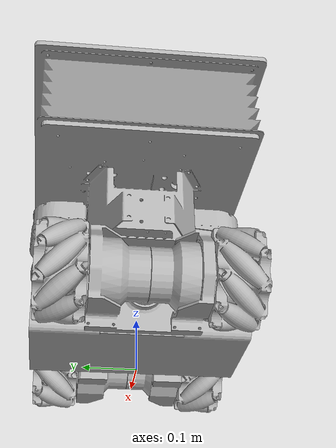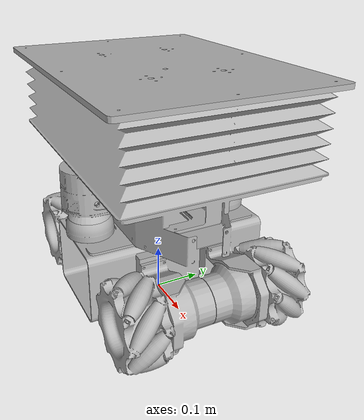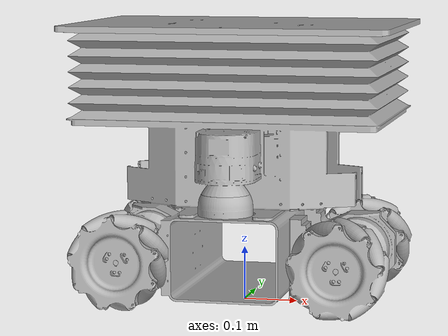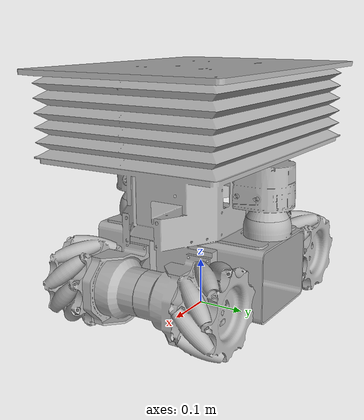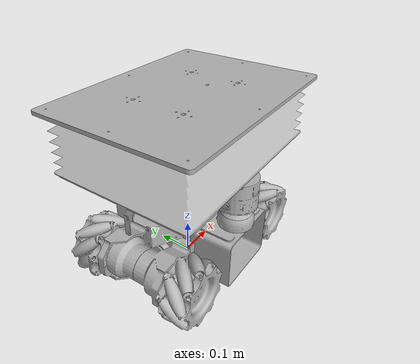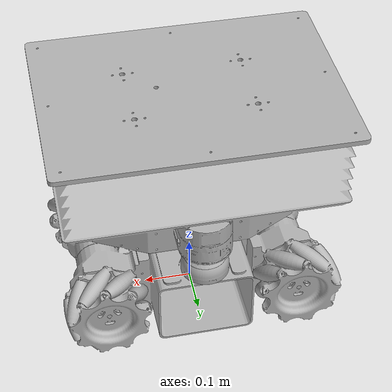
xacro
<?xml version="1.0" ?>
<robot name="activeroboticx_mecanum" xmlns:xacro="http://www.ros.org/wiki/xacro">

<xacro:include filename="$(find activeroboticx_mecanum)/urdf/materials.xacro" />
<xacro:include filename="$(find activeroboticx_mecanum)/urdf/activeroboticx_mecanum.trans" />
<xacro:include filename="$(find activeroboticx_mecanum)/urdf/activeroboticx_mecanum.gazebo" />

<link name="base_link">
  <inertial>
    <origin rpy="0 0 0" xyz="-0.002067261604428623 -9.778246955711723e-06 0.250496264751393"/>
    <mass value="8.09906607499397"/>
    <inertia ixx="4.716901" ixy="-9.4e-05" ixz="-0.047269" iyy="6.297014" iyz="9.3e-05" izz="4.46011"/>
  </inertial>
  <visual>
    <origin rpy="0 0 0" xyz="0 0 0"/>
    <geometry>
      <mesh filename="package://activeroboticx_mecanum/meshes/base_link.stl" scale="0.001 0.001 0.001"/>
    </geometry>
    <material name="silver"/>
  </visual>
  <collision>
    <origin rpy="0 0 0" xyz="0 0 0"/>
    <geometry>
      <mesh filename="package://activeroboticx_mecanum/meshes/base_link.stl" scale="0.001 0.001 0.001"/>
    </geometry>
  </collision>
</link>

<link name="wheel_fr">
  <inertial>
    <origin rpy="0 0 0" xyz="2.9652387883188913e-05 0.01645244231972756 -1.3155933793251862e-05"/>
    <mass value="1.028659645614542"/>
    <inertia ixx="0.013151" ixy="-5e-06" ixz="5e-06" iyy="0.019751" iyz="2e-06" izz="0.013159"/>
  </inertial>
  <visual>
    <origin rpy="0 0 0" xyz="-0.2025 0.1695 -0.09"/>
    <geometry>
      <mesh filename="package://activeroboticx_mecanum/meshes/wheel_fr.stl" scale="0.001 0.001 0.001"/>
    </geometry>
    <material name="silver"/>
  </visual>
  <collision>
    <origin rpy="0 0 0" xyz="-0.2025 0.1695 -0.09"/>
    <geometry>
      <mesh filename="package://activeroboticx_mecanum/meshes/wheel_fr.stl" scale="0.001 0.001 0.001"/>
    </geometry>
  </collision>
</link>

<link name="wheel_fl">
  <inertial>
    <origin rpy="0 0 0" xyz="2.9645434971137252e-05 -0.01645368864755406 -1.299080277231135e-05"/>
    <mass value="1.028645157582681"/>
    <inertia ixx="0.013151" ixy="5e-06" ixz="5e-06" iyy="0.019751" iyz="-2e-06" izz="0.013159"/>
  </inertial>
  <visual>
    <origin rpy="0 0 0" xyz="-0.2025 -0.1695 -0.09"/>
    <geometry>
      <mesh filename="package://activeroboticx_mecanum/meshes/wheel_fl.stl" scale="0.001 0.001 0.001"/>
    </geometry>
    <material name="silver"/>
  </visual>
  <collision>
    <origin rpy="0 0 0" xyz="-0.2025 -0.1695 -0.09"/>
    <geometry>
      <mesh filename="package://activeroboticx_mecanum/meshes/wheel_fl.stl" scale="0.001 0.001 0.001"/>
    </geometry>
  </collision>
</link>

<link name="wheel_br">
  <inertial>
    <origin rpy="0 0 0" xyz="-2.7943556098891653e-05 0.01645350428185552 -1.3156281121126656e-05"/>
    <mass value="1.028274501056833"/>
    <inertia ixx="0.01315" ixy="5e-06" ixz="-5e-06" iyy="0.01975" iyz="2e-06" izz="0.013158"/>
  </inertial>
  <visual>
    <origin rpy="0 0 0" xyz="0.2025 0.1695 -0.09"/>
    <geometry>
      <mesh filename="package://activeroboticx_mecanum/meshes/wheel_br.stl" scale="0.001 0.001 0.001"/>
    </geometry>
    <material name="silver"/>
  </visual>
  <collision>
    <origin rpy="0 0 0" xyz="0.2025 0.1695 -0.09"/>
    <geometry>
      <mesh filename="package://activeroboticx_mecanum/meshes/wheel_br.stl" scale="0.001 0.001 0.001"/>
    </geometry>
  </collision>
</link>

<link name="wheel_bl">
  <inertial>
    <origin rpy="0 0 0" xyz="-2.7965054648998455e-05 -0.016452209098566956 -1.2980013533989143e-05"/>
    <mass value="1.0928286344150415"/>
    <inertia ixx="0.01315" ixy="-5e-06" ixz="-5e-06" iyy="0.01975" iyz="-2e-06" izz="0.013158"/>
  </inertial>
  <visual>
    <origin rpy="0 0 0" xyz="0.2025 -0.1695 -0.09"/>
    <geometry>
      <mesh filename="package://activeroboticx_mecanum/meshes/wheel_bl.stl" scale="0.001 0.001 0.001"/>
    </geometry>
    <material name="silver"/>
  </visual>
  <collision>
    <origin rpy="0 0 0" xyz="0.2025 -0.1695 -0.09"/>
    <geometry>
      <mesh filename="package://activeroboticx_mecanum/meshes/wheel_bl.stl" scale="0.001 0.001 0.001"/>
    </geometry>
  </collision>
</link>

<link name="lidar_right">
  <inertial>
    <origin rpy="0 0 0" xyz="4.210194106515371e-05 -0.0008159080526261853 -0.019935922055739658"/>
    <mass value="0.231047091009913"/>
    <inertia ixx="0.001576" ixy="0.0" ixz="0.0" iyy="0.001574" iyz="-1e-06" izz="0.002614"/>
  </inertial>
  <visual>
    <origin rpy="0 0 0" xyz="4.2e-05 0.15767 -0.221"/>
    <geometry>
      <mesh filename="package://activeroboticx_mecanum/meshes/lidar_right.stl" scale="0.001 0.001 0.001"/>
    </geometry>
    <material name="silver"/>
  </visual>
  <collision>
    <origin rpy="0 0 0" xyz="4.2e-05 0.15767 -0.221"/>
    <geometry>
      <mesh filename="package://activeroboticx_mecanum/meshes/lidar_right.stl" scale="0.001 0.001 0.001"/>
    </geometry>
  </collision>
</link>

<link name="lidar_left">
  <inertial>
    <origin rpy="0 0 0" xyz="-4.21020474641944e-05 0.0008159077486483424 -0.01993592205573974"/>
    <mass value="0.2310470910099243"/>
    <inertia ixx="0.001576" ixy="0.0" ixz="-0.0" iyy="0.001574" iyz="1e-06" izz="0.002614"/>
  </inertial>
  <visual>
    <origin rpy="0 0 0" xyz="-4.2e-05 -0.15767 -0.221"/>
    <geometry>
      <mesh filename="package://activeroboticx_mecanum/meshes/lidar_left.stl" scale="0.001 0.001 0.001"/>
    </geometry>
    <material name="silver"/>
  </visual>
  <collision>
    <origin rpy="0 0 0" xyz="-4.2e-05 -0.15767 -0.221"/>
    <geometry>
      <mesh filename="package://activeroboticx_mecanum/meshes/lidar_left.stl" scale="0.001 0.001 0.001"/>
    </geometry>
  </collision>
</link>

<joint name="motor_fr" type="continuous">
  <origin rpy="0 0 0" xyz="0.2025 -0.1695 0.09"/>
  <parent link="base_link"/>
  <child link="wheel_fr"/>
  <axis xyz="0.0 0.01 0.0"/>
  <limit effort="100" velocity="100"/>
  <joint_properties damping="0.0" friction="0.0"/>
</joint>

<joint name="motor_fl" type="continuous">
  <origin rpy="0 0 0" xyz="0.2025 0.1695 0.09"/>
  <parent link="base_link"/>
  <child link="wheel_fl"/>
  <axis xyz="0.0 0.01 0.0"/>
  <limit effort="100" velocity="100"/>
  <joint_properties damping="0.0" friction="0.0"/>
</joint>

<joint name="motor_br" type="continuous">
  <origin rpy="0 0 0" xyz="-0.2025 -0.1695 0.09"/>
  <parent link="base_link"/>
  <child link="wheel_br"/>
  <axis xyz="0.0 0.01 0.0"/>
  <limit effort="100" velocity="100"/>
  <joint_properties damping="0.0" friction="0.0"/>
</joint>

<joint name="motor_bl" type="continuous">
  <origin rpy="0 0 0" xyz="-0.2025 0.1695 0.09"/>
  <parent link="base_link"/>
  <child link="wheel_bl"/>
  <axis xyz="0.0 0.01 0.0"/>
  <limit effort="100" velocity="100"/>
  <joint_properties damping="0.0" friction="0.0"/>
</joint>

<joint name="Rigid5" type="fixed">
  <origin rpy="0 0 0" xyz="-4.2e-05 -0.15767 0.221"/>
  <parent link="base_link"/>
  <child link="lidar_right"/>
</joint>

<joint name="Rigid6" type="fixed">
  <origin rpy="0 0 0" xyz="4.2e-05 0.15767 0.221"/>
  <parent link="base_link"/>
  <child link="lidar_left"/>
</joint>

</robot>

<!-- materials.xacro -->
<robot name="activeroboticx_mecanum" xmlns:xacro="http://www.ros.org/wiki/xacro" >

<material name="silver">
  <color rgba="0.700 0.700 0.700 1.000"/>
</material>

    <gazebo reference="wheel_fr">
		<mu1 value="1.0"/>
		<mu2 value="1.0"/>
		<kp value="10000000.0" />
		<kd value="1.0" />
		<fdir1 value="1 0 0"/>
        <turnGravityOff>false</turnGravityOff>
    </gazebo>

    <gazebo reference="wheel_fl">
		<mu1 value="1.0"/>
		<mu2 value="1.0"/>
		<kp value="10000000.0" />
		<kd value="1.0" />
		<fdir1 value="1 0 0"/>
        <turnGravityOff>false</turnGravityOff>
    </gazebo>

    <gazebo reference="wheel_br">
		<mu1 value="1.0"/>
		<mu2 value="1.0"/>
		<kp value="10000000.0" />
		<kd value="1.0" />
		<fdir1 value="1 0 0"/>
        <turnGravityOff>false</turnGravityOff>
    </gazebo>

    <gazebo reference="wheel_bl">
		<mu1 value="1.0"/>
		<mu2 value="1.0"/>
		<kp value="10000000.0" />
		<kd value="1.0" />
		<fdir1 value="1 0 0"/>
        <turnGravityOff>false</turnGravityOff>
    </gazebo>

</robot>

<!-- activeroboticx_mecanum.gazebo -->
<robot name="activeroboticx_mecanum" xmlns:xacro="http://www.ros.org/wiki/xacro" >

<xacro:property name="body_color" value="Gazebo/Silver" />

<gazebo>
  <plugin filename="libgazebo_ros_control.so" name="control"/>
</gazebo>
<gazebo reference="base_link">
  <material>${body_color}</material>
  <mu1>0.2</mu1>
  <mu2>0.2</mu2>
  <selfCollide>true</selfCollide>
  <gravity>true</gravity>
</gazebo>

<gazebo reference="wheel_fr">
  <material>${body_color}</material>
  <mu1>0.2</mu1>
  <mu2>0.2</mu2>
  <selfCollide>true</selfCollide>
</gazebo>

<gazebo reference="wheel_fl">
  <material>${body_color}</material>
  <mu1>0.2</mu1>
  <mu2>0.2</mu2>
  <selfCollide>true</selfCollide>
</gazebo>

<gazebo reference="wheel_br">
  <material>${body_color}</material>
  <mu1>0.2</mu1>
  <mu2>0.2</mu2>
  <selfCollide>true</selfCollide>
</gazebo>

<gazebo reference="wheel_bl">
  <material>${body_color}</material>
  <mu1>0.2</mu1>
  <mu2>0.2</mu2>
  <selfCollide>true</selfCollide>
</gazebo>

<gazebo reference="lidar_right">
  <material>${body_color}</material>
  <mu1>0.2</mu1>
  <mu2>0.2</mu2>
  <selfCollide>true</selfCollide>
</gazebo>

<gazebo reference="lidar_left">
  <material>${body_color}</material>
  <mu1>0.2</mu1>
  <mu2>0.2</mu2>
  <selfCollide>true</selfCollide>
</gazebo>

<!--#####################  LIDAR ##########################-->

  <gazebo reference="lidar_right">
    <sensor type="ray" name="right_lidar_sensor">
      <pose>0 0 0 0 0 0</pose>
      <visualize>False</visualize>
      <update_rate>10</update_rate>
      <ray>
        <scan>
          <horizontal>
            <samples>720</samples>
            <resolution>1</resolution>
            <min_angle>2.35619</min_angle>
            <max_angle>7.06858</max_angle>
          </horizontal>
        </scan>
        <range>
          <min>0.05</min>
          <max>20.0</max>
          <resolution>0.01</resolution>
        </range>
        <noise>
          <type>gaussian</type>
          <mean>0.0</mean>
          <stddev>0.01</stddev>
        </noise>
      </ray>
      <plugin name="gazebo_ros_head_hokuyo_controller" filename="libgazebo_ros_laser.so">
        <topicName>/robot/laser/rightscan</topicName>
        <frameName>lidar_right</frameName>
      </plugin>
    </sensor>
  </gazebo>

  <gazebo reference="lidar_left">
    <sensor type="ray" name="left_lidar_sensor">
      <pose>0 0 0 0 0 0</pose>
      <visualize>False</visualize>
      <update_rate>10</update_rate>
      <ray>
        <scan>
          <horizontal>
            <samples>720</samples>
            <resolution>1</resolution>
            <min_angle>-0.785398</min_angle>
            <max_angle>3.92699</max_angle>
          </horizontal>
        </scan>
        <range>
          <min>0.05</min>
          <max>20.0</max>
          <resolution>0.01</resolution>
        </range>
        <noise>
          <type>gaussian</type>
          <mean>0.0</mean>
          <stddev>0.01</stddev>
        </noise>
      </ray>
      <plugin name="gazebo_ros_head_hokuyo_controller" filename="libgazebo_ros_laser.so">
        <topicName>/robot/laser/leftscan</topicName>
        <frameName>lidar_left</frameName>
      </plugin>
    </sensor>
  </gazebo>

  <gazebo>
    <plugin filename="libgazebo_ros_control.so" name="gazebo_ros_control">
      <robotNamespace>/activeroboticx_mecanum</robotNamespace>
      <robotSimType>gazebo_ros_control/DefaultRobotHWSim</robotSimType>
      <legacyModeNS>true</legacyModeNS>
    </plugin>
  </gazebo>

  <!-- mecanum wheel plugin motion mimic -->
  <gazebo>
    <plugin name="mecanum_wheel" filename="libgazebo_ros_planar_move.so">
        <commandTopic>cmd_vel</commandTopic>
        <odometryTopic>odom</odometryTopic>
        <odometryFrame>odom</odometryFrame>
        <odometryRate>50.0</odometryRate>
        <robotBaseFrame>base_link</robotBaseFrame>
        <publishTF>false</publishTF>
    </plugin>
</gazebo>

</robot>
